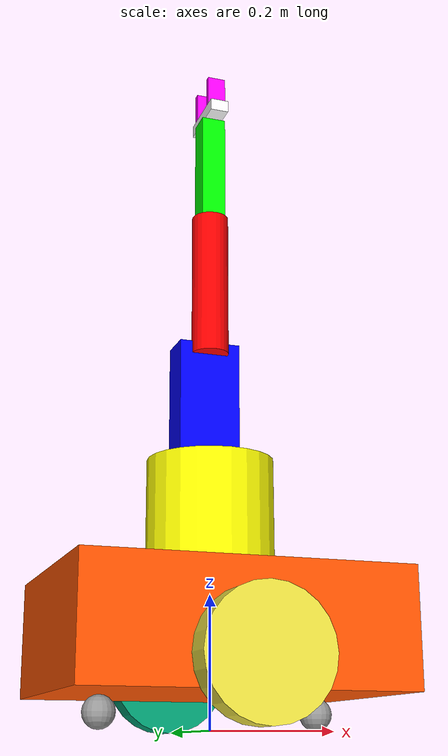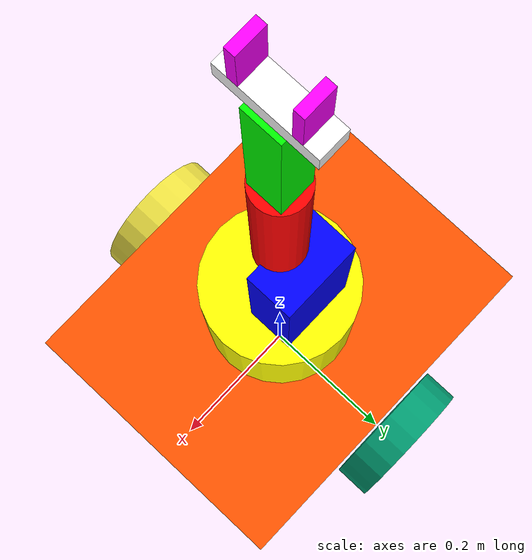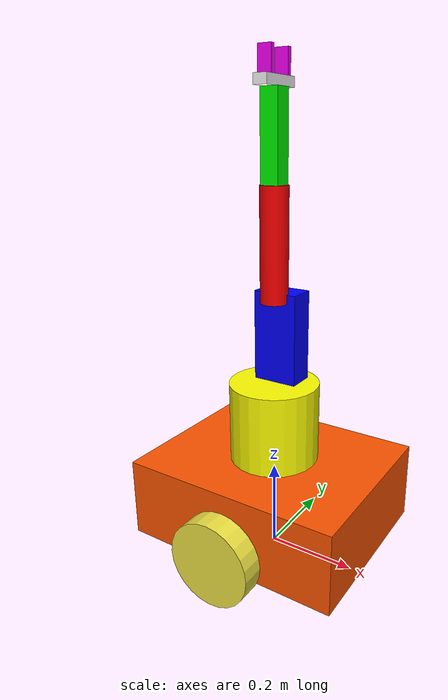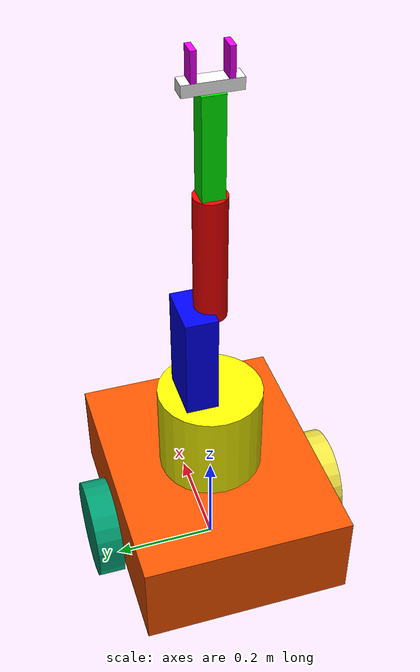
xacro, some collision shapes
<?xml version="1.0"?>
<robot name="myrobot" xmlns:xacro="http://www.ros.org/wiki/xacro">
    <!-- include arm xacro file -->
    <xacro:include filename="$(find myrobot_description)/urdf/myarm.xacro" />
    <!-- Constants -->
    <xacro:property name="car_length" value="0.5" />
    <xacro:property name="car_width" value="0.4" />
    <xacro:property name="car_height" value="0.18" />
    <link name="base_footprint"/>
    <joint name="base_joint" type="fixed">
      <origin xyz="0 0 ${car_height/2+0.05}" rpy="0 0 0"/>
      <parent link="base_footprint"/>
      <child link="base_link"/>
    </joint>

    <link name="base_link">
      <visual>
        <origin rpy="0 0 0" xyz="0 0 0"/>
        <geometry>
          <box size="${car_length} ${car_width} ${car_height}"/>
        </geometry>
        <material name="orange" />
      </visual>
      <visual name="front_cast">
        <origin rpy="0 0 0" xyz="0.17 0 -${car_height/2+0.05/2}"/>
        <geometry>
          <sphere radius="0.0249"/>
        </geometry>
        <material name="light_grey" />
      </visual>
      <visual name="back_cast">
        <origin rpy="0 0 0" xyz="-0.17 0 -${car_height/2+0.05/2}"/>
        <geometry>
          <sphere radius="0.0249"/>
        </geometry>
        <material name="light_grey" />
      </visual>
      <collision>
        <origin rpy="0 0 0" xyz="0 0 0"/>
        <geometry>
          <box size="${car_length} ${car_width} ${car_height}"/>
        </geometry>
      </collision>
      <collision name="front_cast">
        <origin rpy="0 0 0" xyz="0.17 0 -${car_height/2+0.05/2}"/>
        <geometry>
          <sphere radius="0.0249"/>
        </geometry>
      </collision>
      <collision name="back_cast">
        <origin rpy="0 0 0" xyz="-0.17 0 -${car_height/2+0.05/2}"/>
        <geometry>
          <sphere radius="0.0249"/>
        </geometry>
      </collision>
      <box_inertial_matrix m="2.0" l="${car_length}" w="${car_width}" h="${car_height}"/>
    </link>

    <link name="left_wheel">
      <collision name="collision">
        <origin xyz="0 0 0" rpy="${M_PI_2} 0 0"/>
        <geometry>
          <cylinder radius="0.095" length="0.05"/>
        </geometry>
      </collision>
      <visual name="left_wheel_visual">
        <origin xyz="0 0 0" rpy="0 0 -${M_PI_2}"/>
        <geometry>
          <mesh filename="package://myrobot_description/meshes/wheel.dae" />
        </geometry>
      </visual>
      <cylinder_inertial_matrix m="1.0" r="0.095" l="0.05"/>
    </link>

    <joint name="left_wheel_joint" type="continuous">
      <axis xyz="0 1 0" rpy="0 0 0"/>
      <origin xyz="0 ${car_width/2+0.03} 0.095" rpy="0 0 0"/>
      <parent link="base_footprint"/>
      <child link="left_wheel"/>
      <limit effort="6" velocity="1.0"/>
      <joint_properties damping="0.0" friction="0.0"/>
    </joint>

    <link name="right_wheel">
      <collision name="collision">
        <origin xyz="0 0 0" rpy="-${M_PI_2}  0 0"/>
        <geometry>
          <cylinder radius="0.095" length="0.05"/>
        </geometry>
      </collision>
      <visual name="right_wheel_visual">
        <origin xyz="0 0 0" rpy="0 0 ${M_PI_2}"/>
        <geometry>
          <mesh filename="package://myrobot_description/meshes/wheel.dae" />
        </geometry>
      </visual>
      <cylinder_inertial_matrix m="1.0" r="0.095" l="0.05"/>
    </link>
    <joint name="right_wheel_joint" type="continuous">
      <axis xyz="0 1 0" rpy="0 0 0"/>
      <origin xyz="0 -${car_width/2+0.03} 0.095" rpy="0 0 0"/>
      <parent link="base_footprint"/>
      <child link="right_wheel"/>
      <limit effort="6" velocity="1.0"/>
      <joint_properties damping="0.0" friction="0.0"/>
    </joint>
    <joint name="arm_base_joint" type="fixed">
      <parent link="base_link"/>
      <child link="arm_base_link"/>
      <origin rpy="0 0 0" xyz="0 0 ${car_height/2}"/>
    </joint>

</robot>

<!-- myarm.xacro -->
<robot name="myarm" xmlns:xacro="http://www.ros.org/wiki/xacro">

    <!-- include other file -->
    <xacro:include filename="$(find myrobot_description)/urdf/materials.xacro" />

    <!-- Constants -->
    <xacro:property name="M_PI" value="3.1415926535897931" />
    <xacro:property name="M_PI_2" value="1.570796327" />
    <xacro:property name="arm_friction"       value="50.0" />
    <xacro:property name="arm_damping"        value="1.0" />

    <!-- Macro for inertia matrix -->
    <!-- m:mass r:radius l:length -->
    <xacro:macro name="cylinder_inertial_matrix" params="m r l">
        <inertial>
            <mass value="${m}" />
            <inertia ixx="${m*(3*r*r+l*l)/12}" ixy = "0" ixz = "0"
                iyy="${m*(3*r*r+l*l)/12}" iyz = "0"
                izz="${m*r*r/2}" />
        </inertial>
    </xacro:macro>
    <!-- m:mass l:length  w:width h:height-->
    <xacro:macro name="box_inertial_matrix" params="m l w h">
        <inertial>
            <mass value="${m}" />
            <inertia ixx="${m*(h*h+l*l)/12}" ixy = "0" ixz = "0"
                iyy="${m*(w*w+l*l)/12}" iyz = "0"
                izz="${m*(w*w+h*h)/12}" />
        </inertial>
    </xacro:macro>

    <link name="arm_base_link">
      <visual>
        <origin rpy="0 0 0" xyz="0 0 0.09"/>
        <geometry>
          <cylinder length="0.18" radius="0.1"/>
        </geometry>
        <material name="yellow" />
      </visual>
      <collision>
        <origin rpy="0 0 0" xyz="0 0 0.09"/>
        <geometry>
          <cylinder length="0.18" radius="0.1"/>
        </geometry>
      </collision>
      <cylinder_inertial_matrix m="1.0" r="0.1" l="0.18"/>
    </link>

    <joint name="arm_joint1" type="revolute">
      <parent link="arm_base_link"/>
      <child link="arm_link1"/>
      <origin rpy="0 0 0" xyz="0 0 0.18"/>
      <axis xyz="0 0 1" />
      <limit effort="300" velocity="0.6" lower="-2.96" upper="2.96"/>
      <dynamics friction="${arm_friction}" damping="${arm_damping}"/>
    </joint>

    <link name="arm_link1">
      <visual>
        <geometry>
          <box size="0.1 0.06 0.2"/>
        </geometry>
        <origin rpy="0 0 0" xyz="0 0.03 0.1"/>
        <material name="blue"/>
      </visual>
      <collision>
        <geometry>
          <box size="0.1 0.06 0.2"/>
        </geometry>
        <origin rpy="0 0 0" xyz="0 0.03 0.1"/>
      </collision>
      <box_inertial_matrix m="1.0" l="0.1" w="0.06" h="0.2"/>

    </link>
    <joint name="arm_joint2" type="revolute">
      <parent link="arm_link1"/>
      <child link="arm_link2"/>
      <origin rpy="0 0 0" xyz="0 0 0.18"/>
      <axis xyz="0 1 0" />
      <limit effort="300" velocity="0.6" lower="-${M_PI/3*2}" upper="${M_PI/3*2}"/>
      <dynamics friction="${arm_friction}" damping="${arm_damping}"/>
    </joint>

    <link name="arm_link2">
      <visual>
        <geometry>
          <cylinder length="0.24" radius="0.03"/>
        </geometry>
        <origin rpy="0 0 0" xyz="0 0 0.12"/>
        <material name="red" />
      </visual>
      <collision>
        <geometry>
          <cylinder length="0.24" radius="0.03"/>
        </geometry>
        <origin rpy="0 0 0" xyz="0 0 0.12"/>
      </collision>
      <cylinder_inertial_matrix m="1.0" r="0.03" l="0.24"/>
    </link>

    <joint name="arm_joint3" type="revolute">
      <parent link="arm_link2"/>
      <child link="arm_link3"/>
      <origin rpy="0 0 0" xyz="0 0 0.24"/>
      <axis xyz="0 1 0" />
      <limit effort="300" velocity="0.6" lower="-${M_PI/3*2}" upper="${M_PI/3*2}"/>
      <dynamics friction="${arm_friction}" damping="${arm_damping}"/>
    </joint>

    <link name="arm_link3">
      <visual>
        <geometry>
          <box size="0.04 0.04 0.18"/>
        </geometry>
        <origin rpy="0 0 0" xyz="0 0 0.09"/>
        <material name="green" />
      </visual>
      <collision>
        <geometry>
          <box size="0.04 0.04 0.18"/>
        </geometry>
        <origin rpy="0 0 0" xyz="0 0 0.09"/>
      </collision>
      <box_inertial_matrix m="1.0" l="0.04" w="0.04" h="0.18"/>
    </link>
    <joint name="gripper_base_joint" type="fixed">
      <parent link="arm_link3"/>
      <child link="gripper_base_link"/>
      <origin rpy="0 0 0" xyz="0 0 0.18"/>
    </joint>

    <link name="gripper_base_link">
      <visual>
        <geometry>
          <box size="0.03 0.1 0.02"/>
        </geometry>
        <origin rpy="0 0 0" xyz="0 0 0.01"/>
        <material name="white" />
      </visual>
      <collision>
        <geometry>
          <box size="0.03 0.1 0.02"/>
        </geometry>
        <origin rpy="0 0 0" xyz="0 0 0.01"/>
      </collision>
      <box_inertial_matrix m="1.0" l="0.03" w="0.2" h="0.02"/>
    </link>
    <joint name="finger1_joint" type="prismatic">
      <parent link="gripper_base_link"/>
      <child link="finger1_link"/>
      <origin rpy="0 0 0" xyz="0 0.03 0.02"/>
      <axis xyz="0 1 0" />
      <limit effort="300" velocity="0.6" lower="-0.025" upper="0.01"/>
      <dynamics friction="${arm_friction}" damping="${arm_damping}"/>
    </joint>

    <link name="finger1_link">
      <visual>
        <geometry>
          <box size="0.03 0.01 0.05"/>
        </geometry>
        <origin rpy="0 0 0" xyz="0 0 0.025"/>
        <material name="purple" />
      </visual>
      <collision>
        <geometry>
          <box size="0.03 0.01 0.05"/>
        </geometry>
        <origin rpy="0 0 0" xyz="0 0 0.025"/>
      </collision>
      <box_inertial_matrix m="1.0" l="0.03" w="0.01" h="0.05"/>
    </link>

    <joint name="finger2_joint" type="prismatic">
      <parent link="gripper_base_link"/>
      <child link="finger2_link"/>
      <origin rpy="0 0 0" xyz="0 -0.03 0.02"/>
      <axis xyz="0 1 0" />
      <limit effort="300" velocity="0.6" lower="-0.01" upper="0.025"/>
      <dynamics friction="${arm_friction}" damping="${arm_damping}"/>
      <mimic joint="finger1_joint" multiplier="-1"/>
    </joint>

    <link name="finger2_link">
      <visual>
        <geometry>
          <box size="0.03 0.01 0.05"/>
        </geometry>
        <origin rpy="0 0 0" xyz="0 0 0.025"/>
        <material name="purple"/>
      </visual>
      <collision>
        <geometry>
          <box size="0.03 0.01 0.05"/>
        </geometry>
        <origin rpy="0 0 0" xyz="0 0 0.025"/>
      </collision>
      <box_inertial_matrix m="1.0" l="0.03" w="0.01" h="0.05"/>
    </link>
    <joint name="gripper_centor_joint" type="fixed">
      <parent link="gripper_base_link"/>
      <child link="gripper_centor_link"/>
      <origin rpy="0 0 0" xyz="0 0 0.045"/>
    </joint>

    <link name="gripper_centor_link" />
</robot>

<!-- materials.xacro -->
<robot name="material" xmlns:xacro="http://www.ros.org/wiki/xacro">

  <material name="black">
    <color rgba="0.0 0.0 0.0 1.0"/>
  </material>
  <material name="red">
    <color rgba="1.0 0.0 0.0 1.0"/>
  </material>

  <material name="blue">
    <color rgba="0.0 0.0 1.0 1.0"/>
  </material>

  <material name="green">
    <color rgba="0.0 1.0 0.0 1.0"/>
  </material>

  <material name="purple">
    <color rgba="1.0 0 1.0 1.0"/>
  </material>

  <material name="yellow">
    <color rgba="1.0 1.0 0 1.0"/>
  </material>

  <material name="grey">
      <color rgba="0.7 0.7 0.7 1.0"/>
  </material>

  <material name="light_grey">
    <color rgba="0.6 0.6 0.6 1.0"/>
  </material>

  <material name="orange">
    <color rgba="1.0 0.33 0.0 1.0"/>
  </material>

  <material name="white">
    <color rgba="1.0 1.0 1.0 1.0"/>
  </material>

</robot>
